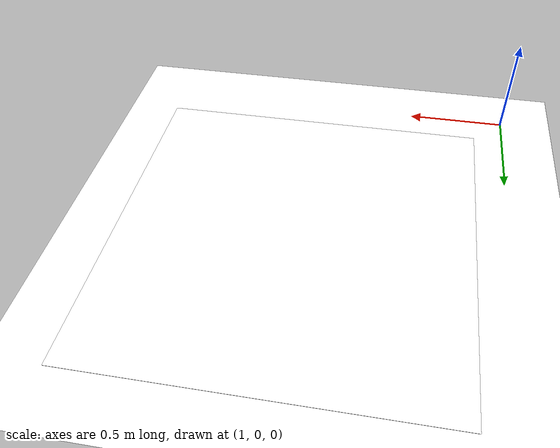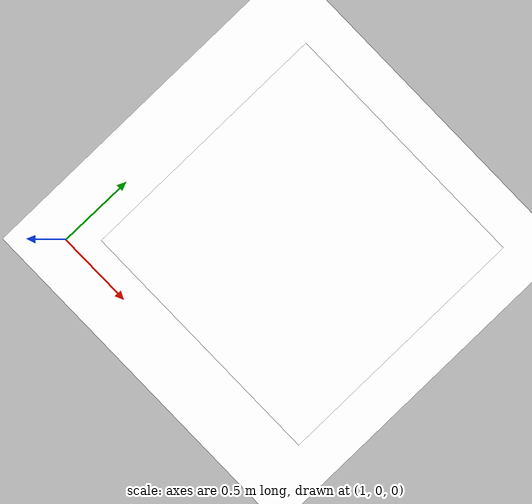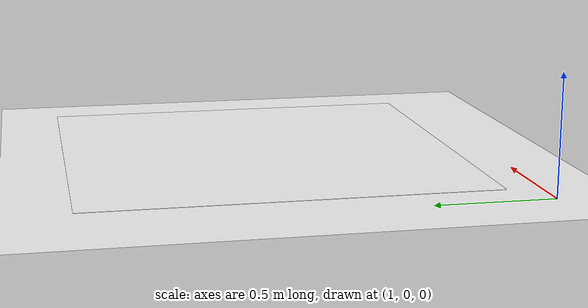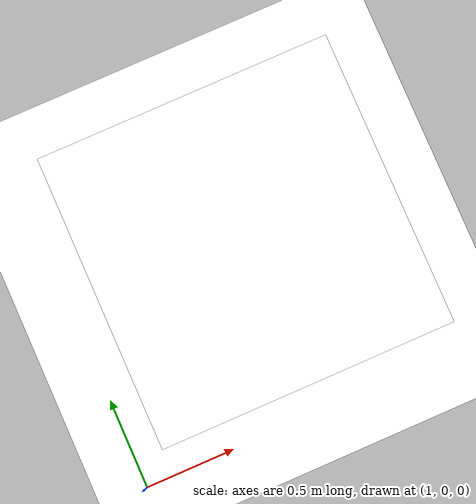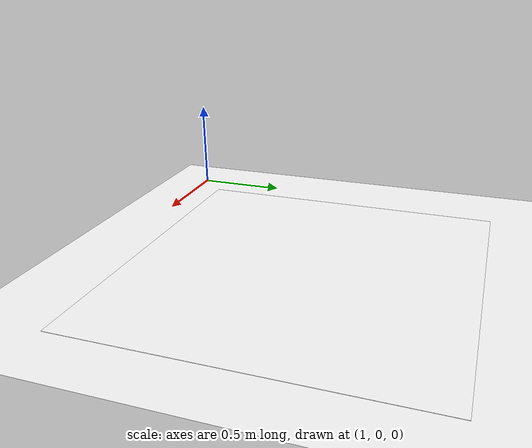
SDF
<?xml version="1.0" ?>
<sdf version="1.9">
  <world name="default">
    <!-- Física do Mundo -->
    <physics type="ode">
      <max_step_size>0.004</max_step_size>
      <real_time_factor>1.0</real_time_factor>
      <real_time_update_rate>250</real_time_update_rate>
    </physics>
    <gravity>0 0 -9.8</gravity>
      <magnetic_field>6e-06 2.3e-05 -4.2e-05</magnetic_field>
      <atmosphere type="adiabatic"/>

    <!-- Plugins de Sistema do Gazebo -->
    <plugin filename="gz-sim-physics-system" name="gz::sim::systems::Physics"/> <!--Sistema de Física do Mundo-->
    <plugin filename="gz-sim-user-commands-system" name="gz::sim::systems::UserCommands"/><!--habilita comandos enviados pelo usuário para o simulador-->
    <plugin filename="gz-sim-scene-broadcaster-system" name="gz::sim::systems::SceneBroadcaster"/><!--visualização da interface gráfica do Gazebo.-->
    <plugin filename="gz-sim-sensors-system" name="gz::sim::systems::Sensors"> <!-- Habilita a simulação e atualização dos sensores presentes no mundo -->
      <render_engine>ogre2</render_engine>
    </plugin>

    <!-- Configuração da Cena Visual: Céu e Nuvens -->
    <scene>
      <grid>false</grid>
      <ambient>0.6 0.6 0.6 1.0</ambient>
      <background>0.8 0.9 1.0 1.0</background>
      <shadows>true</shadows>
      <sky>
        <clouds>
          <speed>12</speed>
        </clouds>
      </sky>
    </scene>

    <!-- Iluminação Solar Direcional -->
    <light type="directional" name="sun">
      <cast_shadows>true</cast_shadows>
      <pose>0 0 20 0 0 0</pose>
      <diffuse>0.9 0.9 0.9 1</diffuse>
      <specular>0.3 0.3 0.3 1</specular>
      <attenuation>
        <range>1000</range>
        <constant>0.9</constant>
        <linear>0.01</linear>
        <quadratic>0</quadratic>
      </attenuation>
      <spot>
          <inner_angle>0</inner_angle>
          <outer_angle>0</outer_angle>
          <falloff>0</falloff>
      </spot>
    </light>

    <!-- Plano de Chão  -->
    <include>
        <uri>model://grass_patch</uri> <!--modelo de piso. caminho: /Simulation_LEAD/simulation_ws/src/sim_environment/models-->
    </include>

    <!--Modelo do Aruco-->
    <include>
      <uri>model://ariel_marker</uri>
      <pose>2.0 1.0 0.005 0 0 0</pose>
    </include>

  </world>
</sdf>

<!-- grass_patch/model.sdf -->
<sdf version="1.9">
  <model name="grass_patch">
    <static>true</static>
    <link name="link">
      <visual name="visual">
        <cast_shadows>false</cast_shadows>
        <geometry><plane><normal>0 0 1</normal><size>40 40</size></plane></geometry>
        <material>
          <diffuse>1.0 1.0 1.0</diffuse>
          <specular>0.1 0.1 0.1</specular>
          <pbr>
            <metal>
              <albedo_map>model://grass_field/materials/textures/grass_dry.png</albedo_map>
              <normal_map>model://grass_field/materials/textures/grass_dry.png</normal_map>
            </metal>
          </pbr>
        </material>
      </visual>
    </link>
  </model>
</sdf>

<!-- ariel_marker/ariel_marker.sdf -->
<sdf version="1.9">
  <model name="ariel_marker">
    <static>true</static>
    <link name="link">
      <visual name="ariel_marker_vis">
        <pose>0 0 0 0 0 3.14159</pose> <!-- Position: x, y, z; Rotation: roll, pitch, yaw -->
        <geometry>
          <plane>
            <normal>0 0 1</normal> <!-- Normal vector for the plane -->
            <size>1.7 1.7</size>   <!-- Size of the marker (e.g., 10cm x 10cm) -->
          </plane>
        </geometry>
        <material>
          <pbr>
            <metal>
              <albedo_map>ariel_marker.png</albedo_map>
              <metalness>0.0</metalness>
            </metal>
          </pbr>
          <ambient>1 1 1 1</ambient>
          <diffuse>1 1 1 1</diffuse>
          <specular>0 0 0 1</specular>
        </material>
      </visual>
    </link>
  </model>
</sdf>
